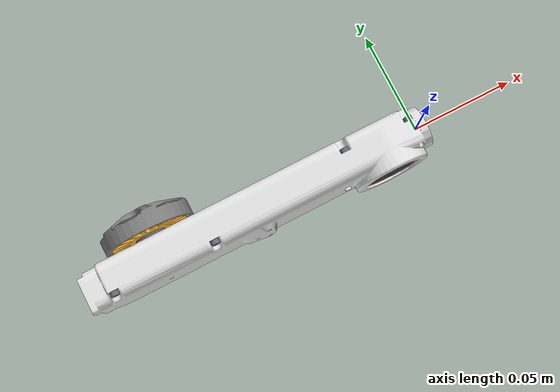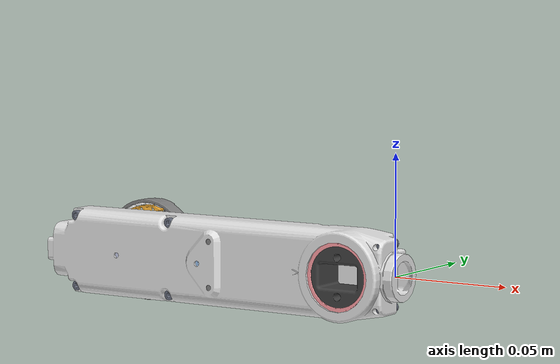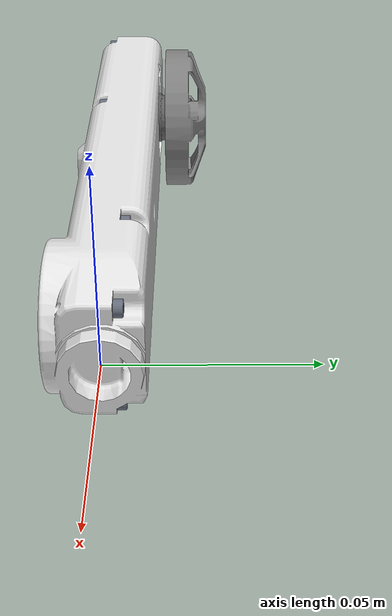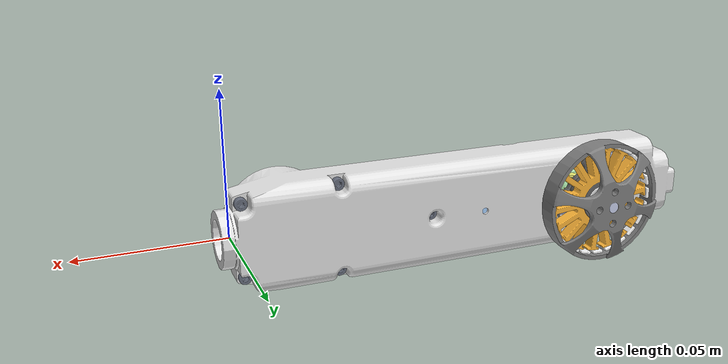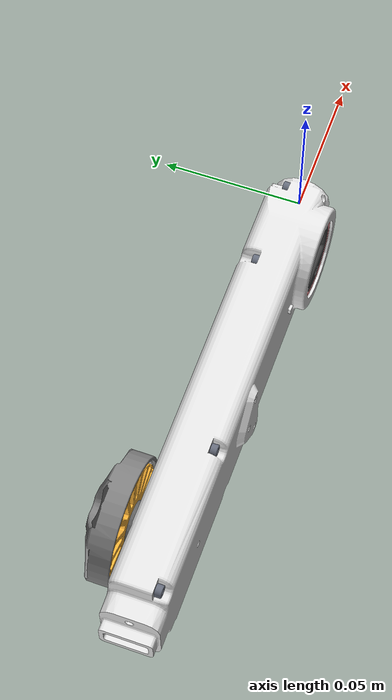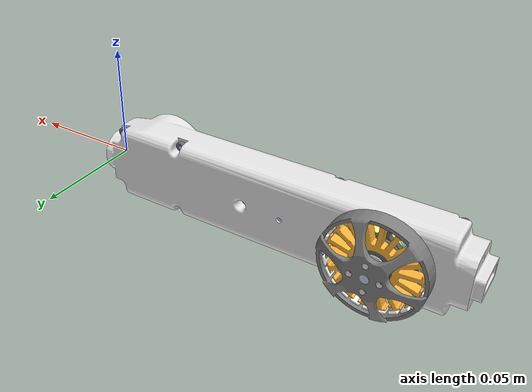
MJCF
<mujoco model="solo12_hip_fe_fr">
  <default>
    <default class="visual">
      <geom group="2" type="mesh" contype="0" conaffinity="0"/>
    </default>
    <default class="collision">
      <geom group="3" type="mesh"/>
    </default>
  </default>
  <asset>
    <material name="material_0" specular="1.0" shininess="0.0" rgba="1.000000 0.501961 0.501961 1.0"/>
    <material name="material_1" specular="1.0" shininess="0.0" rgba="0.654902 0.819608 1.000000 1.0"/>
    <material name="material_2" specular="1.0" shininess="0.0" rgba="0.749020 1.000000 1.000000 1.0"/>
    <material name="material_3" specular="1.0" shininess="0.0" rgba="0.749020 1.000000 0.749020 1.0"/>
    <material name="material_4" specular="1.0" shininess="0.0" rgba="0.592157 0.603922 0.709804 1.0"/>
    <material name="material_5" specular="1.0" shininess="0.0" rgba="0.501961 0.501961 0.501961 1.0"/>
    <material name="material_6" specular="1.0" shininess="0.0" rgba="0.858824 0.858824 0.858824 1.0"/>
    <material name="material_7" specular="1.0" shininess="0.0" rgba="0.376471 0.376471 0.376471 1.0"/>
    <material name="material_8" specular="1.0" shininess="0.0" rgba="1.000000 0.713726 0.219608 1.0"/>
    <material name="material_9" specular="1.0" shininess="0.0" rgba="0.949020 0.949020 0.949020 1.0"/>
    <material name="material_10" specular="1.0" shininess="0.0" rgba="0.792157 0.819608 0.929412 1.0"/>
    <material name="material_11" specular="1.0" shininess="0.0" rgba="1.000000 1.000000 1.000000 1.0"/>
    <material name="material_12" specular="1.0" shininess="0.0" rgba="0.894118 0.894118 0.894118 1.0"/>
    <material name="material_13" specular="1.0" shininess="0.0" rgba="1.000000 1.000000 0.000000 1.0"/>
    <material name="material_14" specular="1.0" shininess="0.0" rgba="0.956863 1.000000 0.403922 1.0"/>
    <material name="material_15" specular="1.0" shininess="0.0" rgba="1.000000 1.000000 0.501961 1.0"/>
    <material name="material_16" specular="1.0" shininess="0.0" rgba="0.403922 0.427451 0.486275 1.0"/>
    <material name="material_17" specular="1.0" shininess="0.0" rgba="0.992157 1.000000 0.494118 1.0"/>
    <material name="material_18" specular="1.0" shininess="0.0" rgba="0.247059 0.247059 0.247059 1.0"/>
    <material name="material_19" specular="1.0" shininess="0.0" rgba="1.000000 0.619608 0.639216 1.0"/>
    <mesh file="solo12_hip_fe_fr_0.obj"/>
    <mesh file="solo12_hip_fe_fr_1.obj"/>
    <mesh file="solo12_hip_fe_fr_2.obj"/>
    <mesh file="solo12_hip_fe_fr_3.obj"/>
    <mesh file="solo12_hip_fe_fr_4.obj"/>
    <mesh file="solo12_hip_fe_fr_5.obj"/>
    <mesh file="solo12_hip_fe_fr_6.obj"/>
    <mesh file="solo12_hip_fe_fr_7.obj"/>
    <mesh file="solo12_hip_fe_fr_8.obj"/>
    <mesh file="solo12_hip_fe_fr_9.obj"/>
    <mesh file="solo12_hip_fe_fr_10.obj"/>
    <mesh file="solo12_hip_fe_fr_11.obj"/>
    <mesh file="solo12_hip_fe_fr_12.obj"/>
    <mesh file="solo12_hip_fe_fr_13.obj"/>
    <mesh file="solo12_hip_fe_fr_14.obj"/>
    <mesh file="solo12_hip_fe_fr_15.obj"/>
    <mesh file="solo12_hip_fe_fr_16.obj"/>
    <mesh file="solo12_hip_fe_fr_17.obj"/>
    <mesh file="solo12_hip_fe_fr_18.obj"/>
    <mesh file="solo12_hip_fe_fr_19.obj"/>
  </asset>
  <worldbody>
    <body name="solo12_hip_fe_fr">
      <geom mesh="solo12_hip_fe_fr_0" material="material_19" class="visual"/>
      <geom mesh="solo12_hip_fe_fr_1" material="material_18" class="visual"/>
      <geom mesh="solo12_hip_fe_fr_2" material="material_17" class="visual"/>
      <geom mesh="solo12_hip_fe_fr_3" material="material_16" class="visual"/>
      <geom mesh="solo12_hip_fe_fr_4" material="material_15" class="visual"/>
      <geom mesh="solo12_hip_fe_fr_5" material="material_14" class="visual"/>
      <geom mesh="solo12_hip_fe_fr_6" material="material_13" class="visual"/>
      <geom mesh="solo12_hip_fe_fr_7" material="material_12" class="visual"/>
      <geom mesh="solo12_hip_fe_fr_8" material="material_11" class="visual"/>
      <geom mesh="solo12_hip_fe_fr_9" material="material_10" class="visual"/>
      <geom mesh="solo12_hip_fe_fr_10" material="material_9" class="visual"/>
      <geom mesh="solo12_hip_fe_fr_11" material="material_8" class="visual"/>
      <geom mesh="solo12_hip_fe_fr_12" material="material_7" class="visual"/>
      <geom mesh="solo12_hip_fe_fr_13" material="material_6" class="visual"/>
      <geom mesh="solo12_hip_fe_fr_14" material="material_5" class="visual"/>
      <geom mesh="solo12_hip_fe_fr_15" material="material_4" class="visual"/>
      <geom mesh="solo12_hip_fe_fr_16" material="material_3" class="visual"/>
      <geom mesh="solo12_hip_fe_fr_17" material="material_2" class="visual"/>
      <geom mesh="solo12_hip_fe_fr_18" material="material_1" class="visual"/>
      <geom mesh="solo12_hip_fe_fr_19" material="material_0" class="visual"/>
      <geom mesh="solo12_hip_fe_fr_0" class="collision"/>
      <geom mesh="solo12_hip_fe_fr_1" class="collision"/>
      <geom mesh="solo12_hip_fe_fr_2" class="collision"/>
      <geom mesh="solo12_hip_fe_fr_3" class="collision"/>
      <geom mesh="solo12_hip_fe_fr_4" class="collision"/>
      <geom mesh="solo12_hip_fe_fr_5" class="collision"/>
      <geom mesh="solo12_hip_fe_fr_6" class="collision"/>
      <geom mesh="solo12_hip_fe_fr_7" class="collision"/>
      <geom mesh="solo12_hip_fe_fr_8" class="collision"/>
      <geom mesh="solo12_hip_fe_fr_9" class="collision"/>
      <geom mesh="solo12_hip_fe_fr_10" class="collision"/>
      <geom mesh="solo12_hip_fe_fr_11" class="collision"/>
      <geom mesh="solo12_hip_fe_fr_12" class="collision"/>
      <geom mesh="solo12_hip_fe_fr_13" class="collision"/>
      <geom mesh="solo12_hip_fe_fr_14" class="collision"/>
      <geom mesh="solo12_hip_fe_fr_15" class="collision"/>
      <geom mesh="solo12_hip_fe_fr_16" class="collision"/>
      <geom mesh="solo12_hip_fe_fr_17" class="collision"/>
      <geom mesh="solo12_hip_fe_fr_18" class="collision"/>
      <geom mesh="solo12_hip_fe_fr_19" class="collision"/>
    </body>
  </worldbody>
</mujoco>
